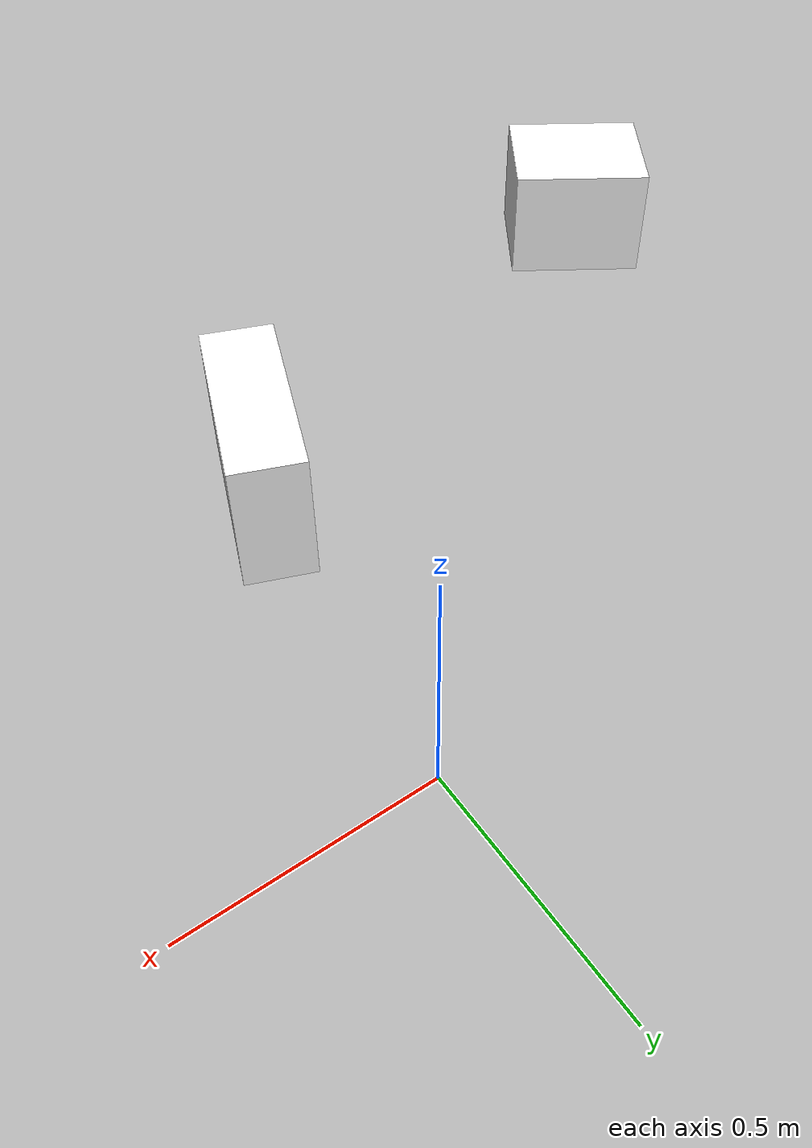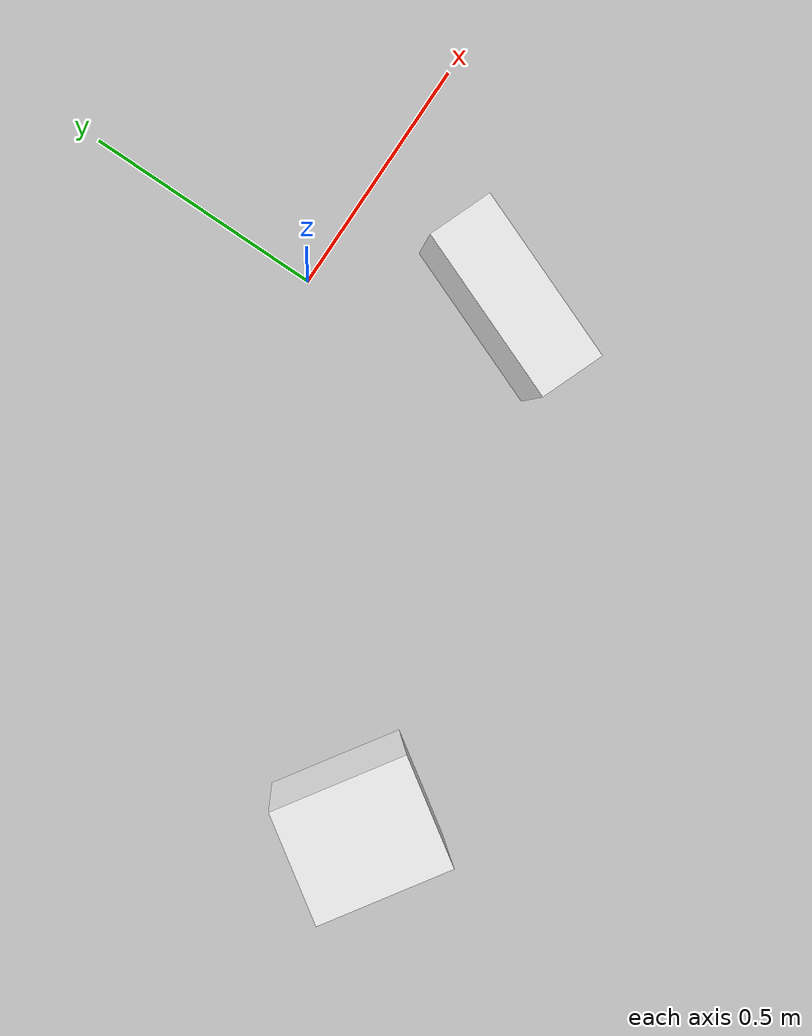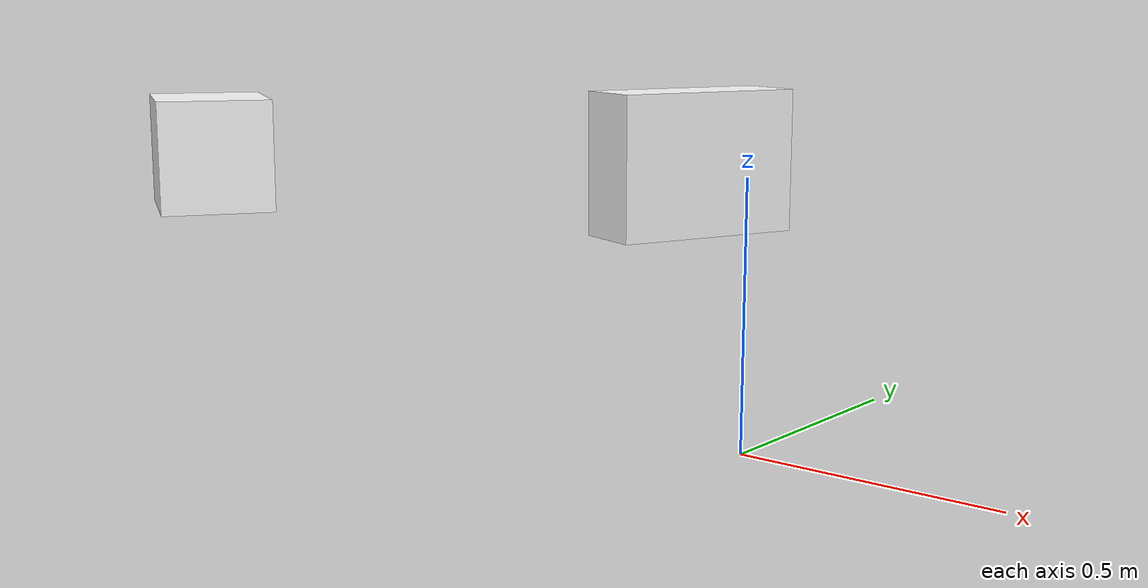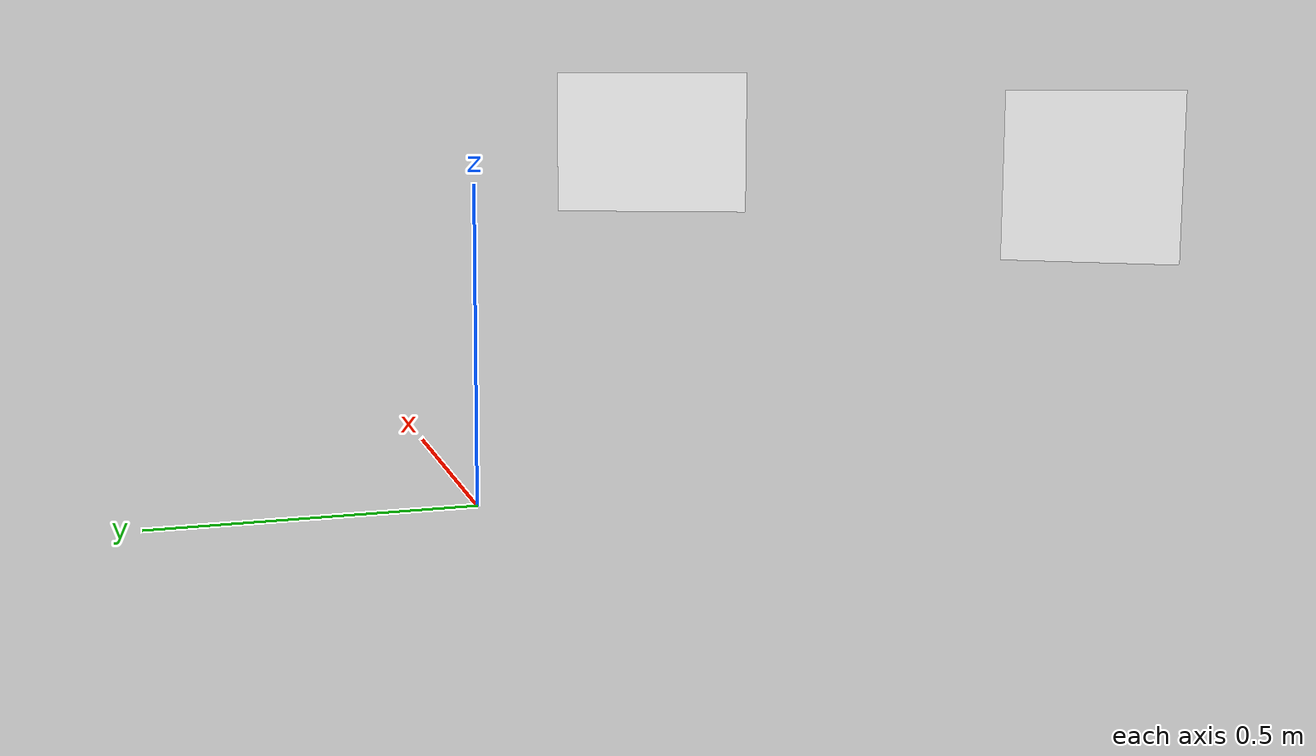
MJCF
<mujoco>
  <compiler angle="radian" />

  <visual>
    <headlight ambient="0.1 0.1 0.1"/>
  </visual>

  <asset>
    <material name="white" rgba="1 1 1 1"/>
    <material name="goal" rgba="0 0 0 0.3"/>
  </asset>

  <option gravity="0 0 -9.8" />
  <worldbody>
    <body name="obj1" pos="-0.72512275 -0.58829561 0.545" quat="0.47373524 -0 -0 -0.88066731">
      <joint type="free" />
      <inertial pos="0 0 0" mass="1" diaginertia="0.01 0.01 0.01"/>
      <geom type="box" size="0.095 0.115 0.095" material="white"/>
      <!--geom type="box" size="0.1 0.2 0.3" rgba="0.9 0 0 1"/-->
    </body>

    <body name="obj2" pos="0.09749255 -0.31601153 0.56" quat="0.56349039 -0 -0 -0.82612262">
      <joint type="free" />
      <inertial pos="0 0 0" mass="1" diaginertia="0.01 0.01 0.01"/>
      <geom type="box" size="0.15 0.055 0.11" material="white"/>
      <!--geom type="box" size="0.1 0.2 0.3" rgba="0.9 0 0 1"/-->
    </body>

  </worldbody>
</mujoco>
